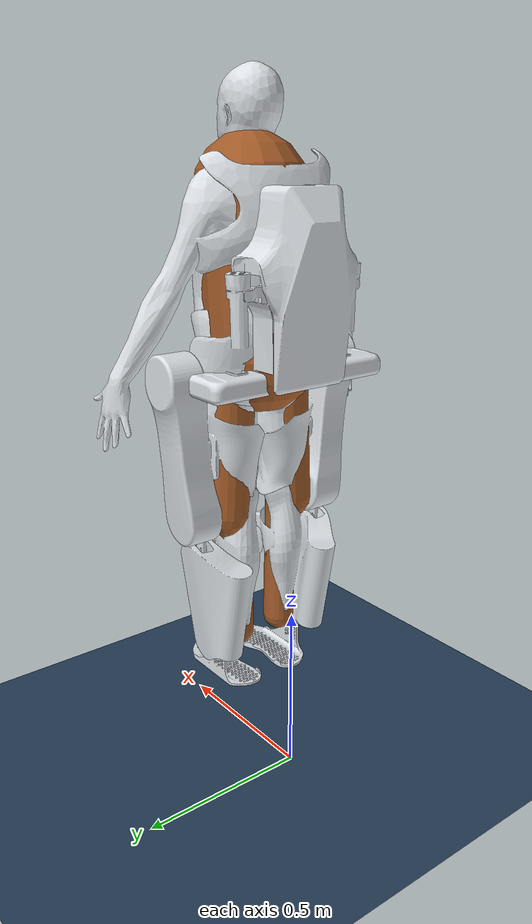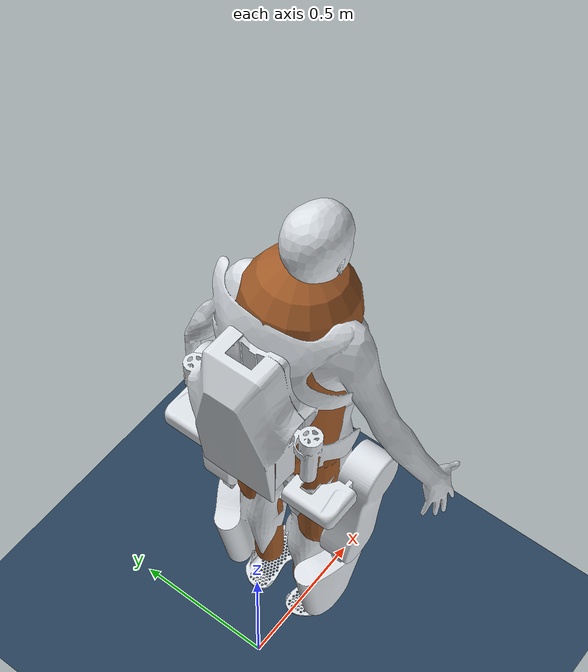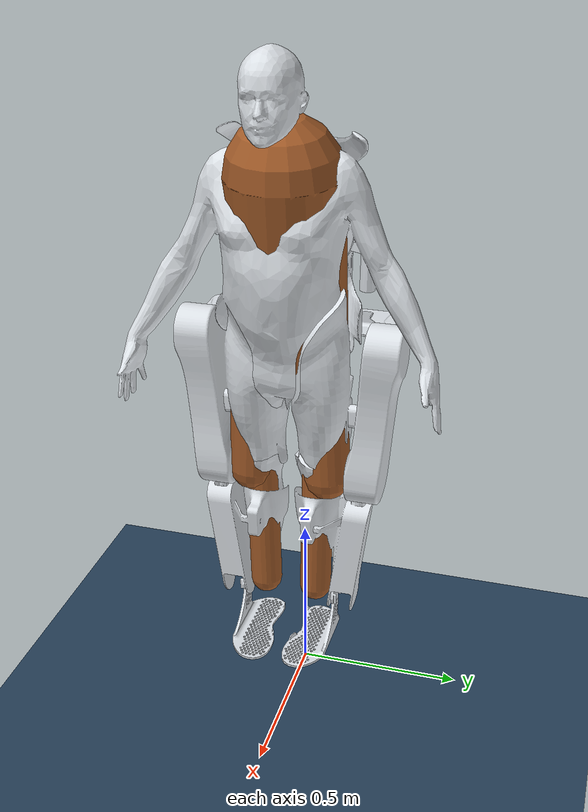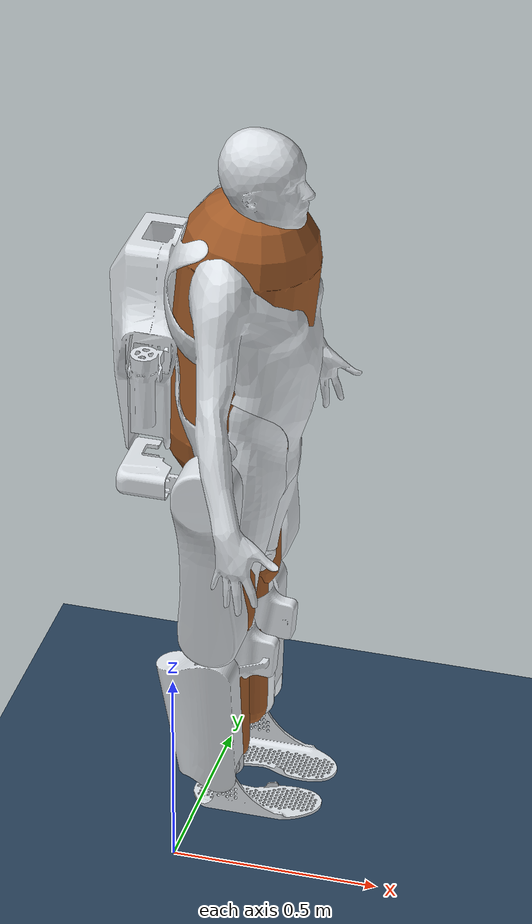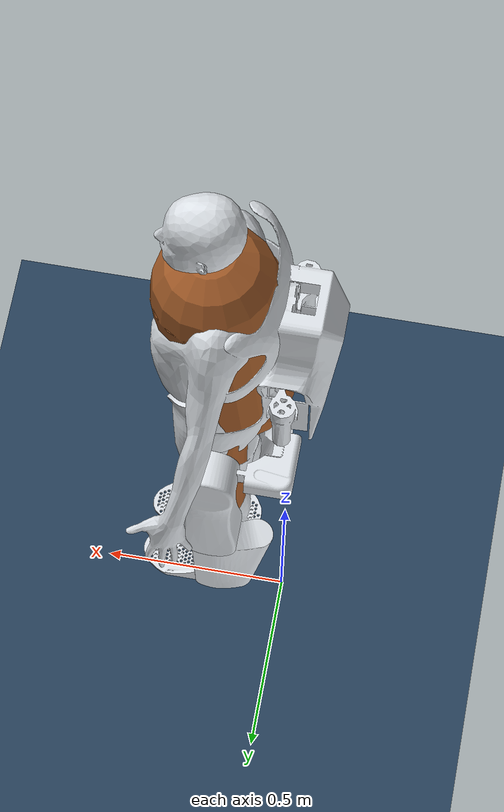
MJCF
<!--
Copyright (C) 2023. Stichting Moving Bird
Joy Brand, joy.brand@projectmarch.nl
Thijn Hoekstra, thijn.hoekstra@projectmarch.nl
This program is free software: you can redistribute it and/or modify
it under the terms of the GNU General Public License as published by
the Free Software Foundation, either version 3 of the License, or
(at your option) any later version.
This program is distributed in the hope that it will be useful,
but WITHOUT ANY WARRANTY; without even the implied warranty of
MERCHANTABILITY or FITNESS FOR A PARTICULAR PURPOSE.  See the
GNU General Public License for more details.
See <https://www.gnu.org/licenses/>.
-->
<mujoco model="exoskeleton">
  <compiler meshdir="meshes" angle="degree" autolimits="true"/>
  <size nuser_actuator='1' nuser_sensor='1' nuser_geom='1'/>
  <option timestep='0.0005' iterations='50' solver='PGS' gravity='0 0 -9.81'/>
  <!-- Degree of Freedom: 27
       Actuators: 21
  -->
  <!-- Timestep is set to X because the high level control runs at X kHz -->

  <asset>
    <texture type="skybox" builtin="gradient" rgb1=".3 .5 .7" rgb2="0 0 0" width="512" height="512"/>
    <texture name="body" type="cube" builtin="flat" mark="cross" width="127" height="1278"
             rgb1="0.8 0.6 0.4" rgb2="0.8 0.6 0.4" markrgb="1 1 1" random="0.01"/>
    <texture name="grid" type="2d" builtin="checker" width="512" height="512" rgb1=".1 .2 .3" rgb2=".2 .3 .4"/>
    <material name="grid" texture="grid" texrepeat="1 1" texuniform="true" reflectance=".2"/>
    <material name="mujoco_orange" texture="body" texuniform="true" rgba="0.8 0.6 .4 1"/>
    <material name="march_grey" rgba=".87 .89 .91 1"/>
    <mesh name="backpack"    file="m8/Backpack.obj"/>
    <mesh name="L_foot"      file="m8/FootLeft.obj"/>
    <mesh name="L_hip"       file="m8/HipLeft.obj"/>
    <mesh name="L_thigh"     file="m8/UpperLegLeft.obj"/>
    <mesh name="L_shin"      file="m8/LowerLegLeft.obj"/>
    <mesh name="R_foot"     scale="1 -1 1"    file="m8/FootLeft.obj"/>
    <mesh name="R_hip"      scale="1 -1 1"    file="m8/HipLeft.obj"/>
    <mesh name="R_thigh"    scale="1 -1 1"    file="m8/UpperLegLeft.obj"/>
    <mesh name="R_shin"     scale="1 -1 1"    file="m8/LowerLegLeft.obj"/>
  </asset>

  <default>
    <site group="5"/>
    <motor ctrlrange="-1 1" ctrllimited="true"/>
    <geom contype="0" conaffinity="0" condim="1" solref="0.005 1"/>
    <equality solref="0.005 1"/>
    <default class="exoskeleton">
      <geom material="march_grey" group="2"/>
    </default>
    <default class="collision">
      <geom contype="1" group="3" type="capsule"/>
      <default class="L_collision">
        <geom contype="2" conaffinity="4"/>
      </default>
      <default class="R_collision">
        <geom contype="4" conaffinity="2"/>
      </default>
    </default>
    <default class="ballast">
      <geom contype="0" material="mujoco_orange" conaffinity="0" group="2" type="capsule" density="985"/>
    </default>
    <default class="HAA_joint">
      <joint damping="107.692308"
             frictionloss="0" stiffness="0"/>
    </default>
    <default class="ADPF_joint">
      <joint damping="43.658537"
             frictionloss="0" stiffness="0"/>
    </default>
    <default class="rotational_joint">
      <joint damping="63.451777"
             frictionloss="0" stiffness="0"/>
    </default>
  </default>

  <visual>
    <map force="0.1" zfar="30"/>
    <rgba haze="0.15 0.25 0.35 1"/>
    <quality shadowsize="4096"/>
    <global offwidth="800" offheight="800"/>
  </visual>

  <worldbody>
    <geom name="floor" size="0 0 .05" type="plane" material="grid" conaffinity="15" condim="3"/>
    <light name="spotlight" mode="targetbodycom" target="backpack"
           diffuse=".8 .8 .8" specular="0.3 0.3 0.3" pos="0 -20 4" cutoff="10"/>

    <body name="backpack"
          pos="0 0 1.2"
          childclass="exoskeleton">
      <light name="top" pos="0 0 2" mode="trackcom"/>
      <camera name="diag" pos="3 -2.5 1" xyaxes="1 1 0 0 1 2" mode="trackcom"/>
      <camera name="right" pos="0 -3 1" xyaxes="1 0 0 0 1 2" mode="trackcom"/>
      <site name='imu_backpack' size='0.01' pos="0 0 0"/>
      <inertial pos="0.013 0.001 0.24" mass="11.02"
                fullinertia="0.379 0.245 0.173 0 -0.008 0.001"/>
      <geom type="mesh" mesh="backpack" />
      <geom name="backpack" type="box"
            size="0.051 0.189 0.165"
            pos="-0.02 0 0.13" class="collision"/>
      <geom name="pilot_torso" fromto=".147 0 .056 .190 0 .500" size=".161" class="ballast"/>
        <site name="imu_torso" size='0.01' pos="0.2 0 0.4"/>

      <!--  LEFT LEG -->
      <body name="L_hip" pos="-0.021 0.08 0.025">
        <inertial pos="0.065 0.112 0" mass="1.277"
                  fullinertia="0.006 0.006 0.011 -0.004 0 0"/>
        <joint name="L_HAA" axis="-1 0 0" range="-15 10" class="HAA_joint"/>
        <geom type="mesh" mesh="L_hip" />
        <geom name="L_hip" fromto="0 0 0 0.182 0.182 0"
              size="0.032" class="L_collision"/>
        <site name="tor_L_HAA" size="0.01" pos="0 0 0"/>

        <body name="L_UL" pos="0.182 0.182 0">
        <inertial pos="0 -0.034 -0.206" mass="8.566"
                  fullinertia="0.259 0.256 0.023 -0.001 0 -0.036"/>
          <joint name="L_HFE" axis="0 -1 0" range="-12 115" class="rotational_joint"/>
          <geom type="mesh" mesh="L_thigh" pos="0 .013 0" />
          <geom name="L_UL" fromto="0 0 0 0 -0.06 -0.413"
              size="0.069" class="L_collision"/>
          <geom name="L_pilot_thigh" fromto="0 -.166 -.05 0 -.149 -.423" size=".069" class="ballast"/>
          <site name="tor_L_HFE" size="0.01" pos="0 0 0"/>

          <body name="L_LL" pos="0 -0.06 -0.413">
            <inertial pos="-0.034 -0.04 -0.223" mass="4.159"
                  fullinertia="0.055 0.064 0.019 0.001 -0.006 -0.002"/>
            <joint name="L_KFE" axis="0 1 0" range="-1 112" class="rotational_joint"/>
            <geom type="mesh" mesh="L_shin"/>
            <geom name="L_LL" fromto="0 0 0 0.0 -0.037 -0.414"
              size="0.047" class="L_collision"/>
            <geom name="L_pilot_shin" fromto="0 -.116 0 0 -.124 -.399"  size=".047" class="ballast"/>
            <site name="tor_L_KFE" size="0.01" pos="0 0 0"/>

            <body name="L_foot" pos="0.0 -0.037 -0.414">
              <inertial pos="0.033 -0.041 -0.08" mass="1.22"
                  fullinertia="0.006 0.01 0.008 0.001 0.002 -0.002"/>
              <joint name="L_ADPF" axis="0 -1 0" range="-25 1" class="ADPF_joint"/>
              <geom type="mesh" mesh="L_foot"/>
              <site name="tor_L_ADPF" size="0.01" pos="0 0 0"/>

              <!-- The L_foot geometry models a footplate which extends past the pressure pads on the soles-->
              <geom name="L_foot" type="box" size="0.159 0.057 0.007"
                  pos="0.069 -0.086 -0.118"  class="L_collision"
                  friction="0.33"/>

              <!-- Pressure sole  -->
             <body name="pres_L_0" pos="-0.045 -0.072 -0.138">
                <geom name="pres_L_0" type="sphere" pos="0 0 0"
                      size="0.01" class="L_collision"  friction="0.33"/>
                <site name="pres_L_0"/>
              </body>
              <body name="pres_L_1" pos="-0.045 -0.072 -0.138">
                <geom name="pres_L_1" type="sphere" pos="0 0 0"
                      size="0.01" class="L_collision"  friction="0.33"/>
                <site name="pres_L_1"/>
              </body>
              <body name="pres_L_2" pos="0.05 -0.061 -0.138">
                <geom name="pres_L_2" type="sphere" pos="0 0 0"
                      size="0.01" class="L_collision"  friction="0.33"/>
                <site name="pres_L_2"/>
              </body>
              <body name="pres_L_3" pos="0.118 -0.05 -0.138">
                <geom name="pres_L_3" type="sphere" pos="0 0 0"
                      size="0.01" class="L_collision"  friction="0.33"/>
                <site name="pres_L_3"/>
              </body>
              <body name="pres_L_4" pos="0.13 -0.083 -0.138">
                <geom name="pres_L_4" type="sphere" pos="0 0 0"
                      size="0.01" class="L_collision"  friction="0.33"/>
                <site name="pres_L_4"/>
              </body>
              <body name="pres_L_5" pos="0.137 -0.115 -0.138">
                <geom name="pres_L_5" type="sphere" pos="0 0 0"
                      size="0.01" class="L_collision"  friction="0.33"/>
                <site name="pres_L_5"/>
              </body>
              <body name="pres_L_6" pos="0.174 -0.07 -0.138">
                <geom name="pres_L_6" type="sphere" pos="0 0 0"
                      size="0.01" class="L_collision"  friction="0.33"/>
                <site name="pres_L_6"/>
              </body>
              <body name="pres_L_7" pos="0.184 -0.105 -0.138">
                <geom name="pres_L_7" type="sphere" pos="0 0 0"
                      size="0.01" class="L_collision"  friction="0.33"/>
                <site name="pres_L_7"/>
              </body>
            </body>
          </body>
        </body>
      </body>

      <!--  RIGHT LEG -->
      <body name="R_hip" pos="-0.021 -0.08 0.025">
        <inertial pos="0.065 -0.112 0" mass="1.277"
                  fullinertia="0.006 0.006 0.011 0.004 0 -0"/>
        <joint name="R_HAA" axis="1 0 0" range="-15 10" class="HAA_joint"/>
        <geom type="mesh" mesh="R_hip" />
        <geom name="R_hip" fromto="0 0 0 0.182 -0.182 0"
              size="0.032" class="R_collision"/>
        <site name="tor_R_HAA" size="0.01" pos="0 0 0"/>

        <body name="R_UL" pos="0.182 -0.182 0">
          <inertial pos="0 0.034 -0.206" mass="8.566"
                  fullinertia="0.259 0.256 0.023 0.001 0 0.036"/>
          <joint name="R_HFE" axis="0 -1 0" range="-12 115" class="rotational_joint"/>
          <geom type="mesh" mesh="R_thigh"/>
          <geom name="R_UL" fromto="0 0 0 0 0.06 -0.413"
              size="0.069" class="R_collision"/>
          <geom name="R_pilot_thigh" fromto="0 .166 -.05 0 .149 -.423" size=".069" class="ballast"/>
          <site name="tor_R_HFE" size="0.01" pos="0 0 0"/>

          <body name="R_LL" pos="0 0.06 -0.413">
            <inertial pos="-0.034 0.04 -0.223" mass="4.159"
                  fullinertia="0.055 0.064 0.019 -0.001 -0.006 0.002"/>
            <joint name="R_KFE" axis="0 1 0" range="-1 112" class="rotational_joint"/>
            <geom type="mesh" mesh="R_shin"/>
            <geom name="R_LL" fromto="0 0 0 0.0 0.037 -0.414"
              size="0.047" class="R_collision"/>
            <geom name="R_pilot_shin" fromto="0 .116 0 0 .124 -.399"  size=".047" class="ballast"/>
            <site name="tor_R_KFE" size="0.01" pos="0 0 0"/>

            <body name="R_foot" pos="0.0 0.037 -0.414">
              <inertial pos="0.033 0.041 -0.08" mass="1.22"
                  fullinertia="0.006 0.01 0.008 -0.001 0.002 0.002"/>
              <joint name="R_ADPF" axis="0 -1 0" range="-25 1" class="ADPF_joint"/>
              <geom type="mesh" mesh="R_foot"/>
              <site name="tor_R_ADPF" size="0.01" pos="0 0 0"/>

              <!-- The R_foot geometry models a footplate which extends past the pressure pads on the soles-->
              <geom name="R_foot" type="box" size="0.159 0.057 0.007"
                  pos="0.069 0.086 -0.118"  class="R_collision"
                  friction="0.33"/>

                  <!-- Pressure sole  -->
              <body name="pres_R_0" pos="-0.045 0.072 -0.138">
                <geom name="pres_R_0" type="sphere" pos="0 0 0"
                      size="0.01" class="L_collision"  friction="0.33"/>
                <site name="pres_R_0"/>
              </body>
              <body name="pres_R_1" pos="-0.045 0.072 -0.138">
                <geom name="pres_R_1" type="sphere" pos="0 0 0"
                      size="0.01" class="L_collision"  friction="0.33"/>
                <site name="pres_R_1"/>
              </body>
              <body name="pres_R_2" pos="0.05 0.061 -0.138">
                <geom name="pres_R_2" type="sphere" pos="0 0 0"
                      size="0.01" class="L_collision"  friction="0.33"/>
                <site name="pres_R_2"/>
              </body>
              <body name="pres_R_3" pos="0.118 0.05 -0.138">
                <geom name="pres_R_3" type="sphere" pos="0 0 0"
                      size="0.01" class="L_collision"  friction="0.33"/>
                <site name="pres_R_3"/>
              </body>
              <body name="pres_R_4" pos="0.13 0.083 -0.138">
                <geom name="pres_R_4" type="sphere" pos="0 0 0"
                      size="0.01" class="L_collision"  friction="0.33"/>
                <site name="pres_R_4"/>
              </body>
              <body name="pres_R_5" pos="0.137 0.115 -0.138">
                <geom name="pres_R_5" type="sphere" pos="0 0 0"
                      size="0.01" class="L_collision"  friction="0.33"/>
                <site name="pres_R_5"/>
              </body>
              <body name="pres_R_6" pos="0.174 0.07 -0.138">
                <geom name="pres_R_6" type="sphere" pos="0 0 0"
                      size="0.01" class="L_collision"  friction="0.33"/>
                <site name="pres_R_6"/>
              </body>
              <body name="pres_R_7" pos="0.184 0.105 -0.138">
                <geom name="pres_R_7" type="sphere" pos="0 0 0"
                      size="0.01" class="L_collision"  friction="0.33"/>
                <site name="pres_R_7"/>
              </body>
            </body>
          </body>
        </body>
      </body>

    </body>
  </worldbody>

  <actuator>
    <!-- User parameter is the maximum no-load motor RPM -->
    <motor name="L_ADPF"    gear="179"  joint="L_ADPF"  />
    <motor name="L_HAA"     gear="280"  joint="L_HAA"  />
    <motor name="L_HFE"     gear="250" joint="L_HFE"   />
    <motor name="L_KFE"     gear="250"  joint="L_KFE"   />
    <motor name="R_ADPF"    gear="179"  joint="R_ADPF"  />
    <motor name="R_HAA"     gear="280"  joint="R_HAA"  />
    <motor name="R_HFE"     gear="250" joint="R_HFE"   />
    <motor name="R_KFE"     gear="250"  joint="R_KFE" />
  </actuator>

  <sensor>
    <!-- User parameter is the number of absolute encoder bits -->
    <!-- encodersoutput position; connected to the actuator -->
    <jointpos name="L_ADPF_pos_output" joint="L_ADPF" user="18" noise="000"/>
    <jointpos name="L_HAA_pos_output" joint="L_HAA" user="18" noise="000"/>
    <jointpos name="L_HFE_pos_output" joint="L_HFE" user="18" noise="000"/>
    <jointpos name="L_KFE_pos_output" joint="L_KFE" user="18" noise="000"/>
    <jointpos name="R_ADPF_output" joint="R_ADPF" user="18" noise="000"/>
    <jointpos name="R_HAA_output" joint="R_HAA" user="18" noise="000"/>
    <jointpos name="R_HFE_output" joint="R_HFE" user="18" noise="000"/>
    <jointpos name="R_KFE_output" joint="R_KFE" user="18" noise="000"/>
    <!-- encodersoutput velocity; connected to the actuator -->
    <jointvel name="L_ADPF_vel_output" joint="L_ADPF" user="18" noise="000"/>
    <jointvel name="L_HAA_vel_output" joint="L_HAA" user="18" noise="000"/>
    <jointvel name="L_HFE_vel_output" joint="L_HFE" user="18" noise="000"/>
    <jointvel name="L_KFE_vel_output" joint="L_KFE" user="18" noise="000"/>
    <jointvel name="R_ADPF_vel_output" joint="R_ADPF" user="18" noise="000"/>
    <jointvel name="R_HAA_vel_output" joint="R_HAA" user="18" noise="000"/>
    <jointvel name="R_HFE_vel_output" joint="R_HFE" user="18" noise="000"/>
    <jointvel name="R_KFE_vel_output" joint="R_KFE" user="18" noise="000"/>
    <!-- torque sensors; connected to the actuator-->

<!--    TODO: This could also be of the type actuatorvel -->
    <torque name="L_ADPF_tor_output" site="tor_L_ADPF" user="13" noise="000"/>
    <torque name="L_HAA_tor_output" site="tor_L_HAA" user="13" noise="000"/>
    <torque name="L_HFE_tor_output" site="tor_L_HFE" user="13" noise="000"/>
    <torque name="L_KFE_tor_output" site="tor_L_KFE" user="13" noise="000"/>
    <torque name="R_ADPF_tor_output" site="tor_R_ADPF" user="13" noise="000"/>
    <torque name="R_HAA_tor_output" site="tor_R_HAA" user="13" noise="000"/>
    <torque name="R_HFE_tor_output" site="tor_R_HFE" user="13" noise="000"/>
    <torque name="R_KFE_tor_output" site="tor_R_KFE" user="13" noise="000"/>

    <!-- pressure soles not finished yet -->
    <force name="L_pressuresole_1_output" site="pres_L_0" noise="000" cutoff="000"/>
    <force name="L_pressuresole_2_output" site="pres_L_1" noise="000" cutoff="000"/>
    <force name="L_pressuresole_3_output" site="pres_L_2" noise="000" cutoff="000"/>
    <force name="L_pressuresole_4_output" site="pres_L_3" noise="000" cutoff="000"/>
    <force name="L_pressuresole_5_output" site="pres_L_4" noise="000" cutoff="000"/>
    <force name="L_pressuresole_6_output" site="pres_L_5" noise="000" cutoff="000"/>
    <force name="L_pressuresole_7_output" site="pres_L_6" noise="000" cutoff="000"/>
    <force name="L_pressuresole_8_output" site="pres_L_7" noise="000" cutoff="000"/>

    <force name="R_pressuresole_1_output" site="pres_R_0" noise="000" cutoff="000"/>
    <force name="R_pressuresole_2_output" site="pres_R_1" noise="000" cutoff="000"/>
    <force name="R_pressuresole_3_output" site="pres_R_2" noise="000" cutoff="000"/>
    <force name="R_pressuresole_4_output" site="pres_R_3" noise="000" cutoff="000"/>
    <force name="R_pressuresole_5_output" site="pres_R_4" noise="000" cutoff="000"/>
    <force name="R_pressuresole_6_output" site="pres_R_5" noise="000" cutoff="000"/>
    <force name="R_pressuresole_7_output" site="pres_R_6" noise="000" cutoff="000"/>
    <force name="R_pressuresole_8_output" site="pres_R_7" noise="000" cutoff="000"/>

    <!-- Noise & cutoff must be determined -->
    <framequat name='backpack_orientation' objtype='site' objname='imu_backpack'/>
    <gyro name='vel_imu_backpack' site='imu_backpack' noise='5e-4' cutoff='34.9'/>
    <accelerometer name='acc_imu_backpack' site='imu_backpack' noise='1e-2' cutoff='157'/>
    <magnetometer name='magnet_imu_backpack' site='imu_backpack'/>

    <framequat name='torso_orientation' objtype='site' objname='imu_torso'/>
    <gyro name='vel_imu_torso' site='imu_torso' noise='5e-4' cutoff='34.9'/>
    <accelerometer name='acc_imu_torso' site='imu_torso' noise='1e-2' cutoff='157'/>
    <magnetometer name='magnet_imu_torso' site='imu_torso'/>

  </sensor>
</mujoco>
